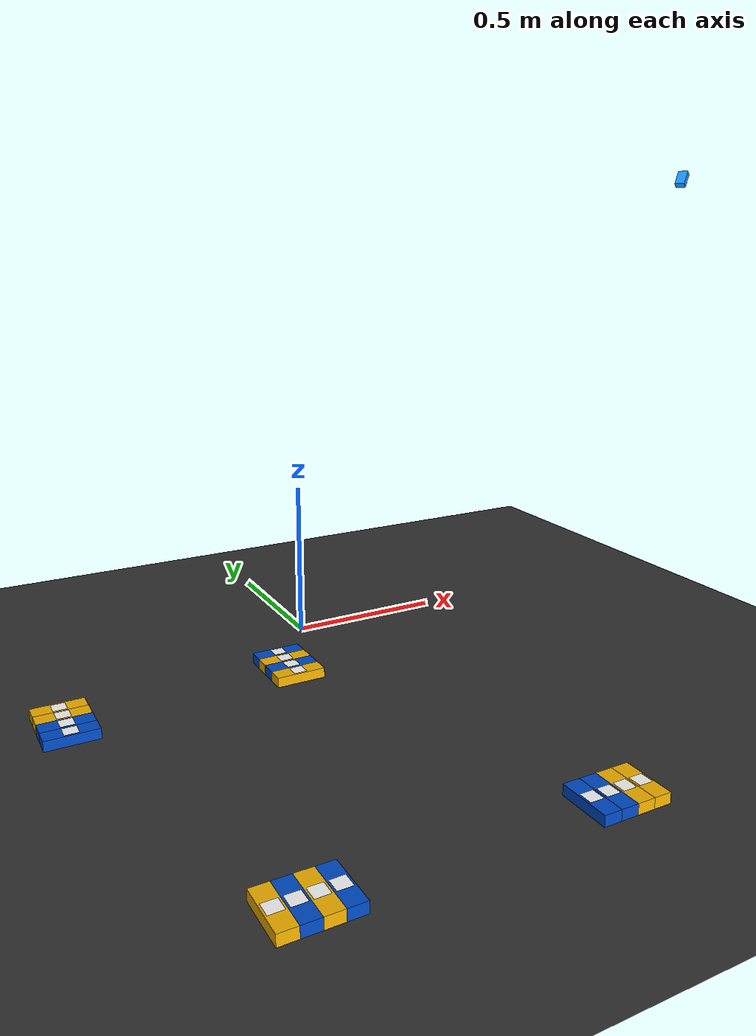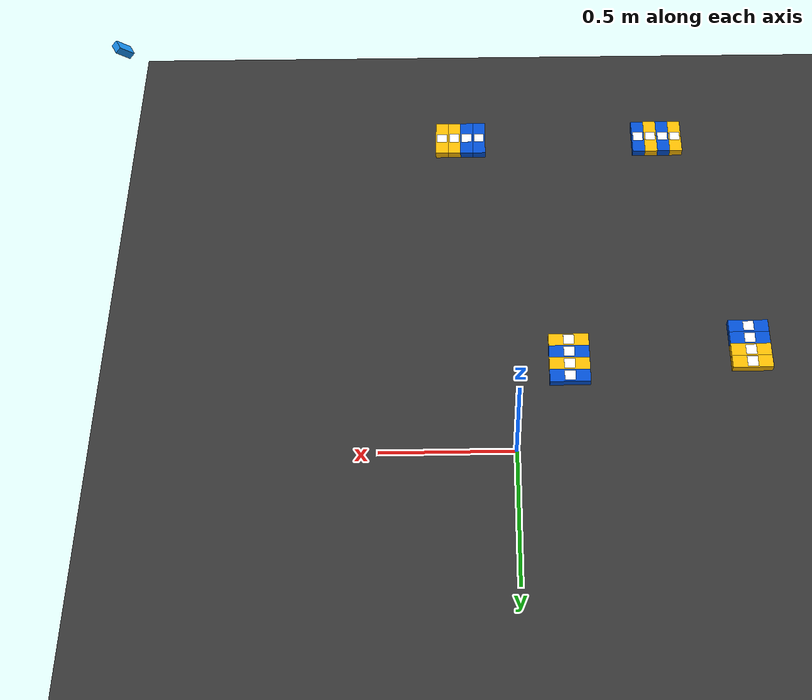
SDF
<sdf version="1.9">
 <world name="eurobot_2026_arena">
  <background><color>0.7 0.7 0.7 1</color></background>
  <light type="directional" name="sun">
   <diffuse>1 1 1 1</diffuse>
   <specular>0.5 0.5 0.5 1</specular>
   <direction>-0.5 0.5 -1</direction>
  </light>
  <gravity>0 0 -9.81</gravity>
  <physics type="ode"><max_step_size>0.001</max_step_size><real_time_factor>1</real_time_factor></physics>
  <plugin filename="libignition-gazebo-physics-system.so" name="ignition::gazebo::systems::Physics"/>
  <plugin filename="libignition-gazebo-user-commands-system.so" name="ignition::gazebo::systems::UserCommands"/>
  <plugin filename="libignition-gazebo-scene-broadcaster-system.so" name="ignition::gazebo::systems::SceneBroadcaster"/>
  <plugin filename="libignition-gazebo-sensors-system.so" name="ignition::gazebo::systems::Sensors"/>
  <model name="ground_plane">
   <static>true</static>
   <link name="link">
    <collision name="collision"><geometry><plane><normal>0 0 1</normal></plane></geometry></collision>
    <visual name="visual">
     <geometry><plane><normal>0 0 1</normal><size>20 20</size></plane></geometry>
     <material>
      <ambient>0.8 0.8 0.8 1</ambient>
      <diffuse>0.2 0.2 0.2 1</diffuse>
      <specular>0.8 0.8 0.8 1</specular>
     </material>
    </visual>
   </link>
  </model>
  <model name="top_camera">
   <static>true</static>
   <pose>0 0 1 0 0 0</pose>
   <link name="camera_link_3">
    <pose>1.1 -0.55 0.5 0 0.90 3.6415</pose>
    <visual name="viz">
     <geometry><box><size>0.05 0.03 0.02</size></box></geometry>
     <material><ambient>0.1 0.6 1 1</ambient></material>
    </visual>
    <sensor name="camera_3" type="camera">
     <always_on>true</always_on>
     <update_rate>30</update_rate>
     <visualize>true</visualize>
     <topic>/top_camera/image_3</topic>
     <camera>
      <horizontal_fov>1.0471976</horizontal_fov>
      <image><width>640</width><height>480</height><format>RGB_INT8</format></image>
      <clip><near>0.05</near><far>100</far></clip>
     </camera>
    </sensor>
   </link>
  </model>
  <include>
   <uri>model://crate_blue</uri>
   <name>crate_blue_001</name>
   <pose>-0.200000 -0.275000 0.050000 0 0 0.000000</pose>
  </include>
  <include>
   <uri>model://crate_yellow</uri>
   <name>crate_yellow_002</name>
   <pose>-0.200000 -0.325000 0.050000 0 0 0.000000</pose>
  </include>
  <include>
   <uri>model://crate_blue</uri>
   <name>crate_blue_003</name>
   <pose>-0.200000 -0.375000 0.050000 0 0 0.000000</pose>
  </include>
  <include>
   <uri>model://crate_yellow</uri>
   <name>crate_yellow_004</name>
   <pose>-0.200000 -0.425000 0.050000 0 0 0.000000</pose>
  </include>
  <include>
   <uri>model://crate_yellow</uri>
   <name>crate_yellow_005</name>
   <pose>-0.875000 -0.325000 0.050000 0 0 0.000000</pose>
  </include>
  <include>
   <uri>model://crate_yellow</uri>
   <name>crate_yellow_006</name>
   <pose>-0.875000 -0.375000 0.050000 0 0 0.000000</pose>
  </include>
  <include>
   <uri>model://crate_blue</uri>
   <name>crate_blue_007</name>
   <pose>-0.875000 -0.425000 0.050000 0 0 0.000000</pose>
  </include>
  <include>
   <uri>model://crate_blue</uri>
   <name>crate_blue_008</name>
   <pose>-0.875000 -0.475000 0.050000 0 0 0.000000</pose>
  </include>
  <include>
   <uri>model://crate_yellow</uri>
   <name>crate_yellow_009</name>
   <pose>-0.675000 -1.375000 0.050000 0 0 -1.570796</pose>
  </include>
  <include>
   <uri>model://crate_blue</uri>
   <name>crate_blue_010</name>
   <pose>-0.625000 -1.375000 0.050000 0 0 -1.570796</pose>
  </include>
  <include>
   <uri>model://crate_yellow</uri>
   <name>crate_yellow_011</name>
   <pose>-0.575000 -1.375000 0.050000 0 0 -1.570796</pose>
  </include>
  <include>
   <uri>model://crate_blue</uri>
   <name>crate_blue_012</name>
   <pose>-0.525000 -1.375000 0.050000 0 0 -1.570796</pose>
  </include>
  <include>
   <uri>model://crate_blue</uri>
   <name>crate_blue_013</name>
   <pose>0.125000 -1.375000 0.050000 0 0 -1.570796</pose>
  </include>
  <include>
   <uri>model://crate_blue</uri>
   <name>crate_blue_014</name>
   <pose>0.175000 -1.375000 0.050000 0 0 -1.570796</pose>
  </include>
  <include>
   <uri>model://crate_yellow</uri>
   <name>crate_yellow_015</name>
   <pose>0.225000 -1.375000 0.050000 0 0 -1.570796</pose>
  </include>
  <include>
   <uri>model://crate_yellow</uri>
   <name>crate_yellow_016</name>
   <pose>0.275000 -1.375000 0.050000 0 0 -1.570796</pose>
  </include>
 </world>
</sdf>

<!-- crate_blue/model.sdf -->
<sdf version="1.9">
  <model name="Crate">
    <static>false</static>
    <link name="link">
      <inertial>
        <mass>0.17</mass>
        <inertia>
          <ixx>0.166</ixx>
          <iyy>0.166</iyy>
          <izz>0.166</izz>
          <ixy>0</ixy>
          <ixz>0</ixz>
          <iyz>0</iyz>
        </inertia>
      </inertial>

      <collision name="collision">
        <geometry>
          <box>
            <size>0.15 0.05 0.03</size>
          </box>
        </geometry>
        <surface>
          <friction>
            <ode>
              <mu>1.0</mu>
              <mu2>1.0</mu2>
            </ode>
          </friction>
          <bounce/>
          <contact/>
        </surface>
      </collision>

      <visual name="visual">
        <geometry>
          <box>
            <size>0.15 0.05 0.03</size>
          </box>
        </geometry>
        <material>
          <ambient>0.0 0.3 0.8 1</ambient>
          <diffuse>0.0 0.3 0.8 1</diffuse>
          <specular>0.2 0.2 0.2 1</specular>
        </material>
      </visual>
      <visual name="aruco_top">
        <pose>0 0 0.0155 0 0 0</pose>
        <cast_shadows>false</cast_shadows>
        <geometry>
          <plane>
            <size>0.04 0.04</size>
            <normal>0 0 1</normal>
            <texture>
              <size>0.03 0.03</size>
            </texture>
          </plane>
        </geometry>
        <material>
          <diffuse>1 1 1 1</diffuse>
          <!-- ↑this is must!!!! -->
          <pbr>
            <metal>
              <albedo_map>model://models/aruco/aruco_36.png</albedo_map>
              <metalness>0.0</metalness>
              <roughness>1.0</roughness>
            </metal>
          </pbr>
          <double_sided>true</double_sided>
        </material>
      </visual>
    </link>
  </model>
</sdf>

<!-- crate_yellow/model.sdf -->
<sdf version="1.9">
  <model name="Crate_yellow">
    <static>false</static>
    <link name="link">
      <inertial>
        <mass>0.17</mass>
        <inertia>
          <ixx>0.166</ixx>
          <iyy>0.166</iyy>
          <izz>0.166</izz>
          <ixy>0</ixy>
          <ixz>0</ixz>
          <iyz>0</iyz>
        </inertia>
      </inertial>

      <collision name="collision">
        <geometry>
          <box>
            <size>0.15 0.05 0.03</size>
          </box>
        </geometry>
        <surface>
          <friction>
            <ode>
              <mu>1.0</mu>
              <mu2>1.0</mu2>
            </ode>
          </friction>
          <bounce/>
          <contact/>
        </surface>
      </collision>

      <visual name="visual">
        <geometry>
          <box>
            <size>0.15 0.05 0.03</size>
          </box>
        </geometry>
        <material>
          <ambient>0.969 0.710 0.000 1</ambient>
          <diffuse>0.969 0.710 0.000 1</diffuse>
          <specular>0.2 0.2 0.2 1</specular>
        </material>
      </visual>
      <visual name="aruco_top">
        <pose>0 0 0.0155 0 0 0</pose>
        <cast_shadows>false</cast_shadows>
        <geometry>
          <plane>
            <size>0.04 0.04</size>
            <normal>0 0 1</normal>
            <texture>
              <size>0.03 0.03</size>
            </texture>
          </plane>
        </geometry>
        <material>
          <diffuse>1 1 1 1</diffuse>
          <!-- ↑this is must!!!! -->
          <pbr>
            <metal>
              <albedo_map>model://models/aruco/aruco_47.png</albedo_map>
              <metalness>0.0</metalness>
              <roughness>1.0</roughness>
            </metal>
          </pbr>
          <double_sided>true</double_sided>
        </material>
      </visual>
    </link>
  </model>
</sdf>
